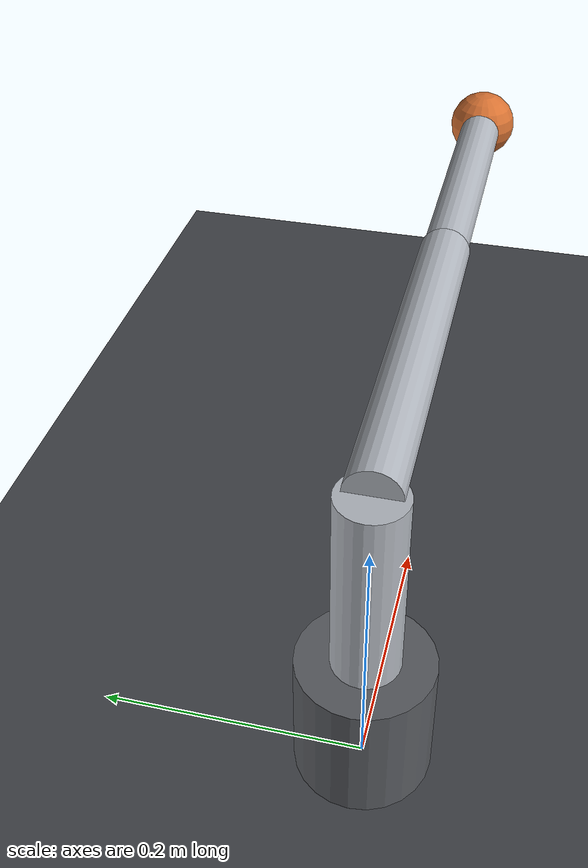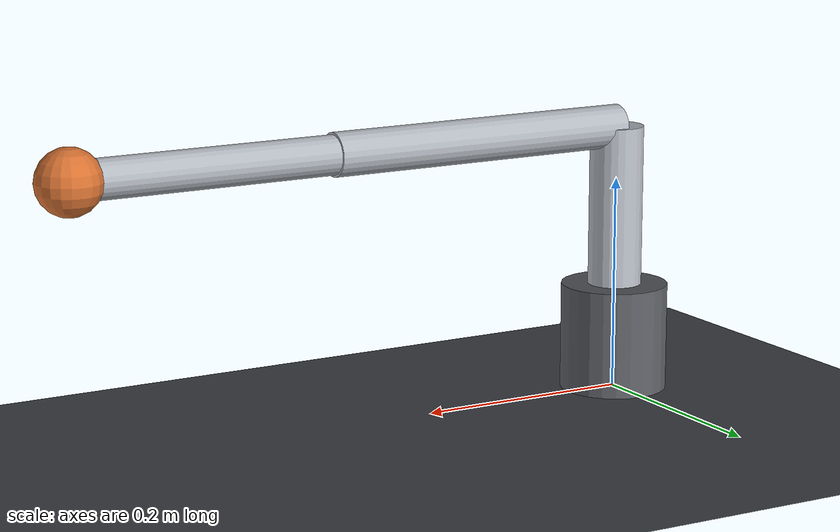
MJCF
<mujoco model="arm3_highfidelity">
  <!-- Generated by build_arm.py. Inertials are analytic (see inertia.py),
       not auto-derived. Edit the design parameters in build_arm.py, not here. -->
  <compiler angle="radian" autolimits="true"/>
  <option timestep="0.001" integrator="RK4" gravity="0 0 -9.81"/>

  <default>
    <geom rgba="0.7 0.72 0.75 1" contype="0" conaffinity="0"/>
    <joint type="hinge" limited="false"/>
    <motor ctrlrange="-40 40" gear="0.8500"/>
  </default>

  <worldbody>
    <light pos="0 0 2.5" dir="0 0 -1" diffuse="0.9 0.9 0.9"/>
    <geom name="floor" type="plane" size="2 2 0.1" rgba="0.25 0.26 0.28 1"/>

    <!-- fixed pedestal -->
    <geom name="pedestal" type="cylinder" fromto="0 0 0 0 0 0.1"
          size="0.05" rgba="0.35 0.36 0.38 1"/>

    <body name="link1" pos="0 0 0.1">
      <joint name="q1" axis="0 0 1" damping="0.5000" frictionloss="0.3000"/>
      <inertial pos="0.000000 0.000000 0.075000" mass="0.234111" fullinertia="5.013497e-04 5.013497e-04 1.247814e-04 0.000000e+00 0.000000e+00 0.000000e+00"/>
      <geom name="g_link1" type="cylinder" fromto="0 0 0 0 0 0.15" size="0.025"/>

      <body name="link2" pos="0 0 0.15">
        <joint name="q2" axis="0 1 0" damping="0.4000" frictionloss="0.2500"/>
        <inertial pos="0.150000 0.000000 0.000000" mass="0.282461" fullinertia="9.730768e-05 2.167108e-03 2.167108e-03 0.000000e+00 0.000000e+00 0.000000e+00"/>
        <geom name="g_link2" type="cylinder" fromto="0 0 0 0.3 0 0" size="0.020"/>

        <body name="link3" pos="0.3 0 0">
          <joint name="q3" axis="0 1 0" damping="0.2000" frictionloss="0.1500"/>
          <inertial pos="0.125000 0.000000 0.000000" mass="0.209937" fullinertia="5.762769e-05 1.122235e-03 1.122235e-03 0.000000e+00 0.000000e+00 0.000000e+00"/>
          <geom name="g_link3" type="cylinder" fromto="0 0 0 0.25 0 0" size="0.018"/>

          <body name="payload" pos="0.25 0 0">
            <inertial pos="0.000000 0.000000 0.000000" mass="0.500000" fullinertia="1.800000e-04 1.800000e-04 1.800000e-04 0.000000e+00 0.000000e+00 0.000000e+00"/>
            <geom name="g_payload" type="sphere" size="0.03"
                  rgba="0.85 0.45 0.2 1"/>
            <site name="tip" pos="0 0 0" size="0.008"/>
          </body>
        </body>
      </body>
    </body>
  </worldbody>

  <actuator>
    <motor name="m1" joint="q1"/>
    <motor name="m2" joint="q2"/>
    <motor name="m3" joint="q3"/>
  </actuator>

  <sensor>
    <jointpos joint="q1"/>
    <jointpos joint="q2"/>
    <jointpos joint="q3"/>
  </sensor>
</mujoco>
